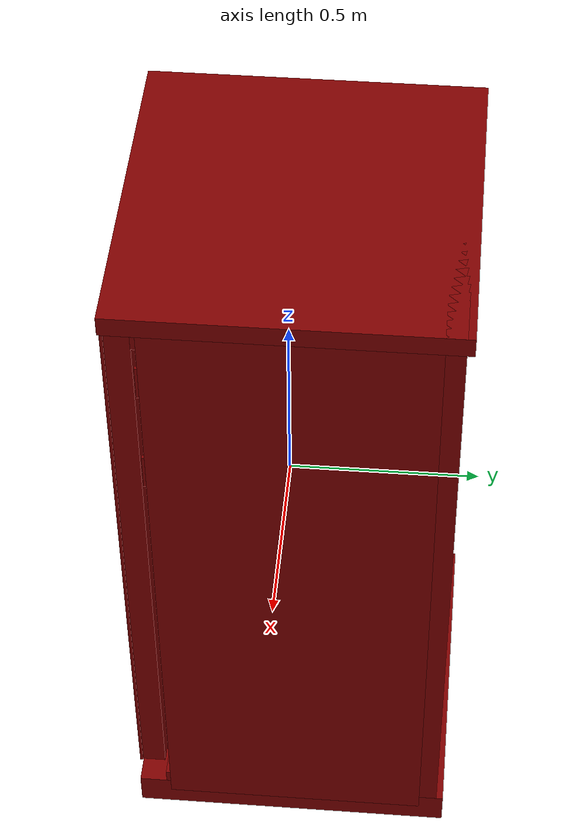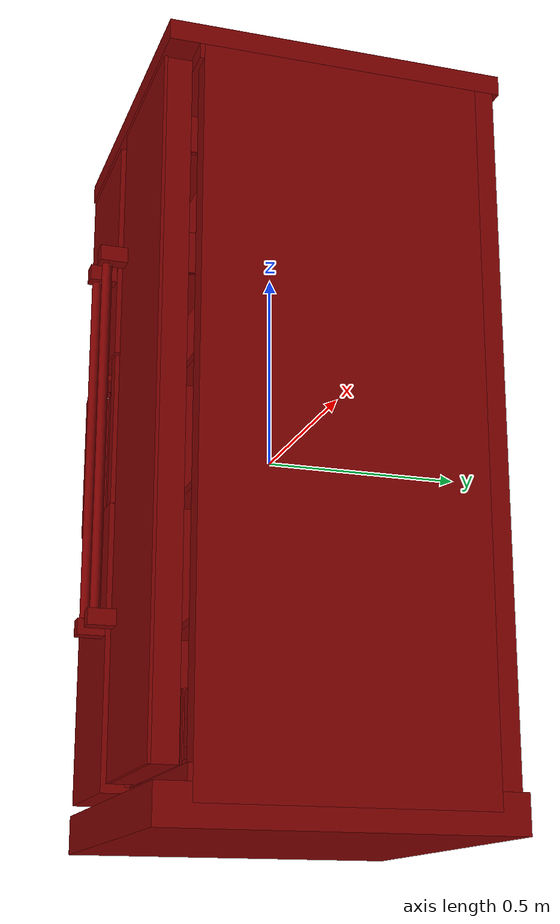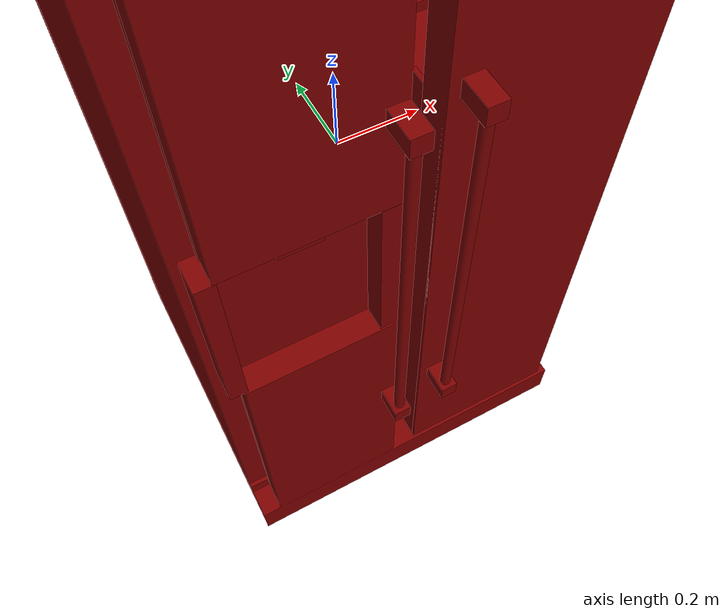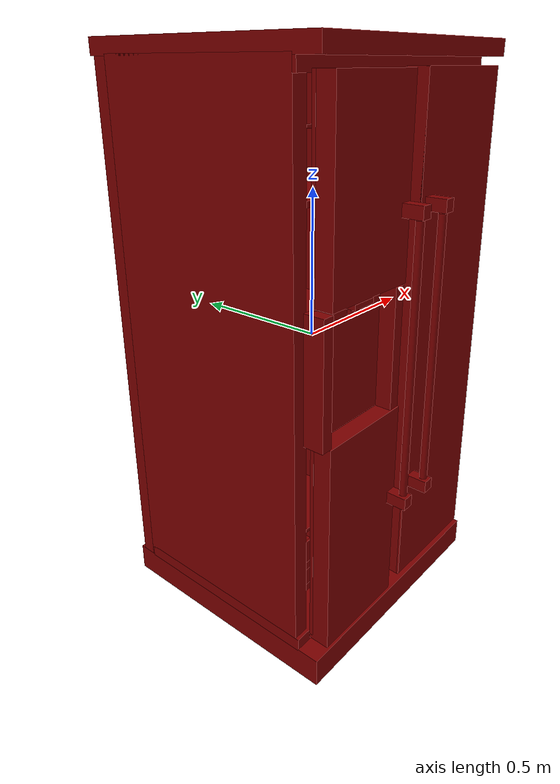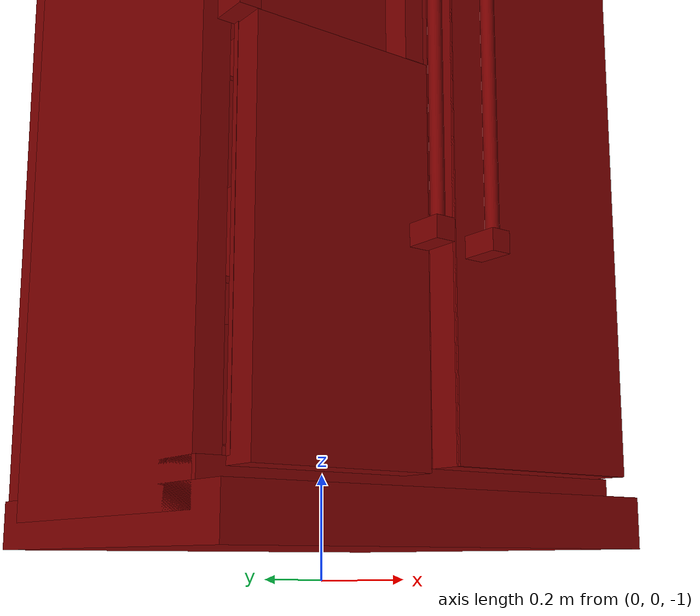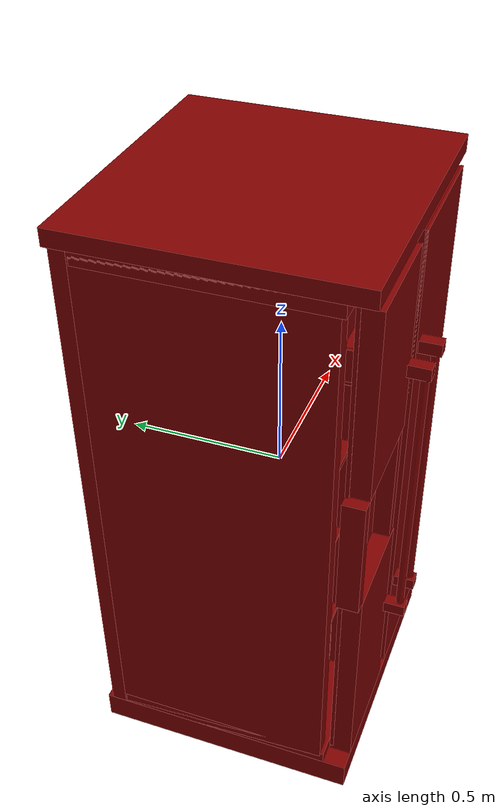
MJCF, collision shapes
<?xml version='1.0' encoding='UTF-8'?>
<mujoco model="model">
  <option timestep="0.005" gravity="0.0 0.0 -9.81"/>
  <compiler angle="radian"/>
  <asset>
    <mesh file="visuals/freezer_door.obj" name="freezer_door_vis"/>
    <mesh file="visuals/freezer_drawer0.obj" name="freezer_drawer0_vis"/>
    <mesh file="visuals/fridge_door.obj" name="fridge_door_vis"/>
    <mesh file="visuals/fridge_door_Clear.obj" name="fridge_door_Clear_vis"/>
    <mesh file="visuals/fridge_drawer0.obj" name="fridge_drawer0_vis"/>
    <mesh file="visuals/fridge_drawer0_Clear.obj" name="fridge_drawer0_Clear_vis"/>
    <mesh file="visuals/Body001.obj" name="Body001_vis"/>
    <mesh file="visuals/Body001_Clear.obj" name="Body001_Clear_vis"/>
    <texture file="visuals/T_BC001.png" name="Body001_material" type="2d"/>
    <material name="Body001_material" rgba="1 1 1 1.0" texture="Body001_material" shininess="0.5" specular="0.3103448502657381"/>
    <texture file="visuals/T_BC001.png" name="freezer_door_material" type="2d"/>
    <material name="freezer_door_material" rgba="1 1 1 1.0" texture="freezer_door_material" shininess="0.5" specular="0.3103448502657381"/>
    <texture file="visuals/T_BC001.png" name="freezer_drawer0_material" type="2d"/>
    <material name="freezer_drawer0_material" rgba="1 1 1 1.0" texture="freezer_drawer0_material" shininess="0.5" specular="0.3103448502657381"/>
    <texture file="visuals/T_BC001.png" name="fridge_door_material" type="2d"/>
    <material name="fridge_door_material" rgba="1 1 1 1.0" texture="fridge_door_material" shininess="0.5" specular="0.3103448502657381"/>
    <material name="fridge_door_Clear_material" rgba="0.7717612981796265 0.7717612981796265 0.7717612981796265 0.25" shininess="0.5" specular="0.3103448502657381"/>
    <texture file="visuals/T_BC001.png" name="fridge_drawer0_material" type="2d"/>
    <material name="fridge_drawer0_material" rgba="1 1 1 1.0" texture="fridge_drawer0_material" shininess="0.5" specular="0.3103448502657381"/>
    <material name="fridge_drawer0_Clear_material" rgba="0.7717612981796265 0.7717612981796265 0.7717612981796265 0.25" shininess="0.5" specular="0.3103448502657381"/>
    <material name="Body001_Clear_material" rgba="0.7717612981796265 0.7717612981796265 0.7717612981796265 0.25" shininess="0.5" specular="0.3103448502657381"/>
  </asset>
  <default>
    <default class="visual">
      <geom conaffinity="0" contype="0" group="1" type="mesh"/>
    </default>
    <default class="collision">
      <geom group="0" rgba="0.5 0 0 0.5"/>
    </default>
    <default class="spawn">
      <geom group="0" rgba="1 1 1 0.5" contype="0" conaffinity="0"/>
      <site group="0" rgba="1 1 1 0.5"/>
    </default>
    <default class="region">
      <geom group="1" conaffinity="0" contype="0" rgba="0 1 0 0"/>
    </default>
  </default>
  <worldbody>
    <body>
      <body name="object">
        <geom mesh="Body001_vis" type="mesh" solimp="0.998 0.998 0.001" solref="0.001 1" friction="0.95 0.3 0.1" class="visual" material="Body001_material"/>
        <geom class="collision" type="box" pos="-3.574727088562213e-05 0.4180082678794861 -0.0028153115417808294" size="0.45173972845077515 0.024893438443541527 0.938129723072052" quat="1.0 0.0 0.0 0.0"/>
        <geom class="collision" type="box" pos="-4.284229362383485e-06 0.03570566326379776 0.9094570875167847" size="0.45180371403694153 0.42542266845703125 0.025857482105493546" quat="1.0 0.0 0.0 0.0"/>
        <geom class="collision" type="box" pos="-3.574727088562213e-05 0.03566867113113403 -0.8937699794769287" size="0.45177221298217773 0.4254537522792816 0.047671034932136536" quat="1.0 0.0 0.0 0.0"/>
        <geom class="collision" type="box" pos="-0.42626821994781494 0.045118656009435654 0.0" size="0.025539742782711983 0.34963005781173706 0.8898904919624329" quat="1.0 0.0 0.0 0.0"/>
        <geom class="collision" type="box" pos="-0.04468351602554321 0.045118656009435654 0.0" size="0.026747845113277435 0.34963005781173706 0.8898904919624329" quat="1.0 0.0 0.0 0.0"/>
        <geom class="collision" type="box" pos="0.4241794943809509 0.045118656009435654 0.0" size="0.027567248791456223 0.34963005781173706 0.8898904919624329" quat="1.0 0.0 0.0 0.0"/>
        <geom class="collision" type="box" pos="-3.574727088562213e-05 0.03696683421730995 -0.8292543888092041" size="0.45177221298217773 0.35299330949783325 0.021167835220694542" quat="1.0 0.0 0.0 0.0"/>
        <geom class="collision" type="box" pos="-3.574727088562213e-05 0.03696683421730995 0.8663995265960693" size="0.45177221298217773 0.35299330949783325 0.021167870610952377" quat="1.0 0.0 0.0 0.0"/>
        <geom class="collision" type="box" pos="-0.2327532321214676 0.07044325768947601 0.5239828824996948" size="0.15743544697761536 0.31523481011390686 0.00892995297908783" quat="1.0 0.0 0.0 0.0"/>
        <geom class="collision" type="box" pos="-0.2371075600385666 0.06846123188734055 0.18351960182189941" size="0.16178977489471436 0.3172158896923065 0.007833733223378658" quat="1.0 0.0 0.0 0.0"/>
        <geom class="collision" type="box" pos="-0.2327532321214676 0.07632682472467422 -0.16383428871631622" size="0.15743544697761536 0.30934932827949524 0.0036680845078080893" quat="1.0 0.0 0.0 0.0"/>
        <geom class="collision" type="box" pos="0.18661412596702576 0.07020843774080276 -0.12300799787044525" size="0.20260027050971985 0.3154667317867279 0.008525255136191845" quat="1.0 0.0 0.0 0.0"/>
        <geom class="collision" type="box" pos="0.1887836456298828 0.07026404142379761 0.5248534083366394" size="0.2004307508468628 0.31541016697883606 0.009232099168002605" quat="1.0 0.0 0.0 0.0"/>
        <geom class="collision" type="box" pos="0.18661412596702576 0.07020843774080276 0.20216870307922363" size="0.20260027050971985 0.31543806195259094 0.008524703793227673" quat="1.0 0.0 0.0 0.0"/>
        <geom class="collision" type="box" pos="-0.23879718780517578 0.07471239566802979 -0.5143452286720276" size="0.16347941756248474 0.3109334707260132 0.005887000821530819" quat="1.0 0.0 0.0 0.0"/>
        <geom class="collision" type="box" pos="0.18661412596702576 0.07020843774080276 -0.4525694251060486" size="0.20260027050971985 0.3154364228248596 0.008524672128260136" quat="1.0 0.0 0.0 0.0"/>
        <geom class="collision" type="box" pos="0.39106428623199463 0.07020843774080276 -0.6527823209762573" size="0.01731051877140999 0.31543561816215515 0.1667531430721283" quat="1.0 0.0 0.0 0.0"/>
        <geom class="collision" type="box" pos="-0.3914681077003479 0.07020843774080276 -0.6786187887191772" size="0.01610194705426693 0.3154347836971283 0.14091645181179047" quat="1.0 0.0 0.0 0.0"/>
        <body name="freezer_door">
          <joint axis="0.0 0.0 -1.0" pos="-0.4102840721607208 -0.35707998275756836 0.017313480377197266" limited="true" name="freezer_door_joint" range="0.0 1.5707963267948966" type="hinge" damping="1" frictionloss="1" armature=".01" stiffness="0.05"/>
          <geom mesh="freezer_door_vis" type="mesh" solimp="0.998 0.998 0.001" solref="0.001 1" friction="0.95 0.3 0.1" class="visual" material="freezer_door_material"/>
          <geom class="collision" type="box" pos="-0.23308248817920685 -0.35859963297843933 -0.4716695249080658" size="0.17166855931282043 0.03511670231819153 0.352693647146225" quat="1.0 0.0 0.0 0.0"/>
          <geom class="collision" type="box" pos="-0.23299886286258698 -0.3585893213748932 0.5669393539428711" size="0.17159730195999146 0.035106416791677475 0.28844690322875977" quat="1.0 0.0 0.0 0.0"/>
          <geom class="collision" type="box" pos="-0.41679680347442627 -0.35731759667396545 0.07822703570127487" size="0.019492769613862038 0.03383245691657066 0.1951131522655487" quat="1.0 0.0 0.0 0.0"/>
          <geom class="collision" type="box" pos="-0.08572738617658615 -0.35731759667396545 0.07822703570127487" size="0.019492793828248978 0.03383249789476395 0.1951133906841278" quat="1.0 0.0 0.0 0.0"/>
          <geom class="collision" type="box" pos="-0.25087979435920715 -0.3297492265701294 0.07822703570127487" size="0.15072783827781677 0.007263421546667814 0.19512563943862915" quat="1.0 0.0 0.0 0.0"/>
          <geom class="collision" type="box" pos="-0.24829870462417603 -0.2896501123905182 0.6265910863876343" size="0.14127379655838013 0.034701839089393616 0.0047733657993376255" quat="1.0 0.0 0.0 0.0"/>
          <geom class="collision" type="box" pos="-0.11297552287578583 -0.2896501123905182 0.6709846258163452" size="0.005090788006782532 0.03470392897725105 0.05093911662697792" quat="1.0 0.0 0.0 0.0"/>
          <geom class="collision" type="box" pos="-0.38325318694114685 -0.2896501123905182 0.67098468542099" size="0.004545565228909254 0.03470395877957344 0.05093913525342941" quat="1.0 0.0 0.0 0.0"/>
          <geom class="collision" type="box" pos="-0.08284567296504974 -0.41582635045051575 0.4938046634197235" size="0.01949291117489338 0.046118322759866714 0.020017951726913452" quat="1.0 0.0 0.0 0.0" name="freezer_door_handle_1"/>
          <geom class="collision" type="box" pos="-0.08284567296504974 -0.41582635045051575 -0.43190082907676697" size="0.01949293538928032 0.04611838236451149 0.020017951726913452" quat="1.0 0.0 0.0 0.0" name="freezer_door_handle_2"/>
          <geom class="collision" type="box" pos="-0.24867546558380127 -0.3481717109680176 0.26166754961013794" size="0.0428679883480072 0.03457985445857048 0.008216096088290215" quat="1.0 0.0 0.0 0.0"/>
          <geom class="collision" type="cylinder" pos="-0.0821428969502449 -0.44111940264701843 0.030123282223939896" size="0.012613501399755478 0.4395133852958679" quat="1.0 0.0 0.0 0.0" name="freezer_door_handle_main"/>
          <geom class="collision" type="cylinder" pos="-0.22978299856185913 -0.3494099974632263 0.24432069063186646" size="0.009704225696623325 0.012385389767587185" quat="1.0 0.0 0.0 0.0"/>
          <geom class="collision" type="cylinder" pos="-0.26655343174934387 -0.3494099974632263 0.24432069063186646" size="0.009704225696623325 0.012385389767587185" quat="1.0 0.0 0.0 0.0"/>
          <geom class="collision" type="box" pos="-0.24728763103485107 -0.256744921207428 0.6854457259178162" size="0.11403132230043411 0.003913906402885914 0.039933834224939346" quat="1.0 0.0 0.0 0.0"/>
          <geom class="collision" type="box" pos="-0.23337888717651367 -0.3295137286186218 0.022493427619338036" size="0.17197094857692719 0.006030810996890068 0.8323107957839966" quat="1.0 0.0 0.0 0.0" name="freezer_door_main"/>
        </body>
        <body name="freezer_drawer0">
          <geom class="region" name="reg_freezer_drawer0" type="box" pos="-0.21742775663733482 0.09240100532770157 -0.6708606779575348" size="0.11544682255387306 0.2665270919203758 0.0784696171283722"/>
          <joint axis="0.0 -1.0 0.0" pos="-0.2195877581834793 0.08571161329746246 -0.6834301948547363" limited="true" name="freezer_drawer0_joint" range="0.0 0.45" type="slide" damping="1" frictionloss="1" armature=".01" stiffness="0.05"/>
          <geom mesh="freezer_drawer0_vis" type="mesh" solimp="0.998 0.998 0.001" solref="0.001 1" friction="0.95 0.3 0.1" class="visual" material="freezer_drawer0_material"/>
          <geom class="collision" type="box" pos="-0.2180977314710617 0.07664361596107483 -0.7688060998916626" size="0.14340153336524963 0.2927916646003723 0.013361509889364243" quat="1.0 0.0 0.0 0.0"/>
          <geom class="collision" type="box" pos="-0.35043060779571533 0.07654658704996109 -0.6819152235984802" size="0.01021281722933054 0.29288870096206665 0.09808265417814255" quat="1.0 0.0 0.0 0.0"/>
          <geom class="collision" type="box" pos="-0.08482231944799423 0.07624107599258423 -0.6819152235984802" size="0.01021282933652401 0.2931942045688629 0.0980827733874321" quat="1.0 0.0 0.0 0.0"/>
          <geom class="collision" type="box" pos="-0.21932147443294525 -0.2118675857782364 -0.6257953643798828" size="0.12007889896631241 0.0032866031397134066 0.040951162576675415" quat="1.0 0.0 0.0 0.0"/>
          <geom class="collision" type="box" pos="-0.21932147443294525 0.3699532747268677 -0.6692607402801514" size="0.12007889896631241 0.0033624242059886456 0.08441653102636337" quat="1.0 0.0 0.0 0.0"/>
          <geom class="collision" type="box" pos="-0.21932147443294525 -0.19866451621055603 -0.7251388430595398" size="0.12007889896631241 0.016489455476403236 0.02957073599100113" quat="1.0 0.0 0.0 0.0"/>
          <geom class="collision" type="box" pos="-0.13600067794322968 -0.19866442680358887 -0.6813681721687317" size="0.04086754098534584 0.016489485278725624 0.015216811560094357" quat="1.0 0.0 0.0 0.0"/>
          <geom class="collision" type="box" pos="-0.30223241448402405 -0.19866442680358887 -0.6813681721687317" size="0.03903937712311745 0.016489511355757713 0.015216811560094357" quat="1.0 0.0 0.0 0.0"/>
        </body>
        <body name="fridge_door">
          <joint axis="0.0 0.0 1.0" pos="0.41606083512306213 -0.3575720489025116 0.0173148512840271" limited="true" name="fridge_door_joint" range="0.0 1.5707963267948966" type="hinge" damping="1" frictionloss="1" armature=".01" stiffness="0.05"/>
          <geom mesh="fridge_door_vis" type="mesh" solimp="0.998 0.998 0.001" solref="0.001 1" friction="0.95 0.3 0.1" class="visual" material="fridge_door_material"/>
          <geom class="collision" type="box" pos="0.20484568178653717 -0.358371764421463 0.02460833638906479" size="0.20361001789569855 0.03488553315401077 0.8341906666755676" quat="1.0 0.0 0.0 0.0"/>
          <geom class="collision" type="cylinder" pos="0.041350577026605606 -0.44111940264701843 0.030123282223939896" size="0.012613501399755478 0.4395133852958679" quat="1.0 0.0 0.0 0.0" name="fridge_door_handle_main"/>
          <geom class="collision" type="box" pos="0.04180731624364853 -0.41582635045051575 -0.43190082907676697" size="0.01949300803244114 0.04611855372786522 0.020017951726913452" quat="1.0 0.0 0.0 0.0" name="fridge_door_handle_2"/>
          <geom class="collision" type="box" pos="0.04180731624364853 -0.41582635045051575 0.4938046634197235" size="0.01949303224682808 0.046118613332509995 0.020017951726913452" quat="1.0 0.0 0.0 0.0" name="fridge_door_handle_1"/>
          <geom class="collision" type="box" pos="0.2036997675895691 -0.2896501123905182 0.31993919610977173" size="0.18109509348869324 0.034702230244874954 0.004773653578013182" quat="1.0 0.0 0.0 0.0"/>
          <geom class="collision" type="box" pos="0.025358308106660843 -0.2896501123905182 0.3672685921192169" size="0.004545565228909254 0.03470395877957344 0.05049070343375206" quat="1.0 0.0 0.0 0.0"/>
          <geom class="collision" type="box" pos="0.38523954153060913 -0.2896501123905182 0.36726853251457214" size="0.005090788006782532 0.03470392897725105 0.05049068480730057" quat="1.0 0.0 0.0 0.0"/>
          <geom class="collision" type="box" pos="0.2036997675895691 -0.2896501123905182 0.6278215646743774" size="0.18109509348869324 0.0347023606300354 0.004773653578013182" quat="1.0 0.0 0.0 0.0"/>
          <geom class="collision" type="box" pos="0.025358308106660843 -0.2896501123905182 0.6742992997169495" size="0.004545565228909254 0.03470395505428314 0.04705320671200752" quat="1.0 0.0 0.0 0.0"/>
          <geom class="collision" type="box" pos="0.38523954153060913 -0.2896501421928406 0.6742992401123047" size="0.005091222934424877 0.03470689430832863 0.04705721139907837" quat="1.0 0.0 0.0 0.0"/>
          <geom class="collision" type="box" pos="0.2040991485118866 -0.25648218393325806 0.686622679233551" size="0.15500517189502716 0.0036017941311001778 0.03938532620668411" quat="1.0 0.0 0.0 0.0"/>
          <geom class="collision" type="box" pos="0.2040991485118866 -0.25648218393325806 0.38032856583595276" size="0.15500536561012268 0.0036017941311001778 0.03938537836074829" quat="1.0 0.0 0.0 0.0"/>
          <geom class="collision" type="box" pos="0.20709335803985596 -0.3892327547073364 0.02460833638906479" size="0.20585769414901733 0.004026219714432955 0.8342103362083435" quat="1.0 0.0 0.0 0.0" name="fridge_door_main"/>
          <body name="fridge_door_Clear">
            <geom mesh="fridge_door_Clear_vis" type="mesh" solimp="0.998 0.998 0.001" solref="0.001 1" friction="0.95 0.3 0.1" class="visual" material="fridge_door_Clear_material"/>
            <geom class="collision" type="box" pos="0.2040991485118866 -0.25648218393325806 0.686622679233551" size="0.15500517189502716 0.0036017941311001778 0.03938532620668411" quat="1.0 0.0 0.0 0.0"/>
            <geom class="collision" type="box" pos="0.2040991485118866 -0.25648218393325806 0.38032856583595276" size="0.15500536561012268 0.0036017941311001778 0.03938537836074829" quat="1.0 0.0 0.0 0.0"/>
          </body>
        </body>
        <body name="fridge_drawer0">
          <geom class="region" name="reg_fridge_drawer0" type="box" pos="0.17539689224213362 0.09208659082651138 -0.6685689687728882" size="0.1564819019511342 0.26594403928518295 0.07569844818115234"/>
          <joint axis="0.0 -1.0 0.0" pos="0.1754477322101593 0.08571018278598785 -0.6834186911582947" limited="true" name="fridge_drawer0_joint" range="0.0 0.45" type="slide" damping="1" frictionloss="1" armature=".01" stiffness="0.05"/>
          <geom mesh="fridge_drawer0_vis" type="mesh" solimp="0.998 0.998 0.001" solref="0.001 1" friction="0.95 0.3 0.1" class="visual" material="fridge_drawer0_material"/>
          <geom class="collision" type="box" pos="0.35627177357673645 0.0771859735250473 -0.678084135055542" size="0.010212794877588749 0.29224932193756104 0.09808243811130524" quat="1.0 0.0 0.0 0.0"/>
          <geom class="collision" type="box" pos="0.002265164628624916 0.07628963887691498 -0.678084135055542" size="0.010212807916104794 0.29314565658569336 0.09808256477117538" quat="1.0 0.0 0.0 0.0"/>
          <geom class="collision" type="box" pos="0.18242888152599335 0.07628963887691498 -0.7649750113487244" size="0.18522994220256805 0.2931334972381592 0.013362164609134197" quat="1.0 0.0 0.0 0.0"/>
          <geom class="collision" type="box" pos="0.17849116027355194 -0.2097601592540741 -0.625745952129364" size="0.1696891188621521 0.0033516890835016966 0.0394631028175354" quat="1.0 0.0 0.0 0.0"/>
          <geom class="collision" type="box" pos="0.15871365368366241 0.3699532151222229 -0.6684530973434448" size="0.1621493101119995 0.003362426068633795 0.0821695402264595" quat="1.0 0.0 0.0 0.0"/>
          <geom class="collision" type="box" pos="0.17849116027355194 -0.20140260457992554 -0.7291679978370667" size="0.16969282925128937 0.011709202080965042 0.03308255970478058" quat="1.0 0.0 0.0 0.0"/>
          <geom class="collision" type="box" pos="0.2886153757572174 -0.20140260457992554 -0.6881449818611145" size="0.059570569545030594 0.011709215119481087 0.03308259695768356" quat="1.0 0.0 0.0 0.0"/>
          <geom class="collision" type="box" pos="0.06517648696899414 -0.20140260457992554 -0.6881449818611145" size="0.05957064405083656 0.011709227226674557 0.033082637935876846" quat="1.0 0.0 0.0 0.0"/>
          <body name="fridge_drawer0_Clear">
            <geom mesh="fridge_drawer0_Clear_vis" type="mesh" solimp="0.998 0.998 0.001" solref="0.001 1" friction="0.95 0.3 0.1" class="visual" material="fridge_drawer0_Clear_material"/>
            <geom class="collision" type="box" pos="0.17849116027355194 -0.2097601592540741 -0.625745952129364" size="0.1696891188621521 0.0033516890835016966 0.0394631028175354" quat="1.0 0.0 0.0 0.0"/>
            <geom class="collision" type="box" pos="0.15871365368366241 0.3699532151222229 -0.6684530973434448" size="0.1621493101119995 0.003362426068633795 0.0821695402264595" quat="1.0 0.0 0.0 0.0"/>
            <geom class="collision" type="box" pos="0.17849116027355194 -0.20140260457992554 -0.7291679978370667" size="0.16969282925128937 0.011709202080965042 0.03308255970478058" quat="1.0 0.0 0.0 0.0"/>
            <geom class="collision" type="box" pos="0.2886153757572174 -0.20140260457992554 -0.6881449818611145" size="0.059570569545030594 0.011709215119481087 0.03308259695768356" quat="1.0 0.0 0.0 0.0"/>
            <geom class="collision" type="box" pos="0.06517648696899414 -0.20140260457992554 -0.6881449818611145" size="0.05957064405083656 0.011709227226674557 0.033082637935876846" quat="1.0 0.0 0.0 0.0"/>
          </body>
        </body>
        <body name="Body001_Clear">
          <geom mesh="Body001_Clear_vis" type="mesh" solimp="0.998 0.998 0.001" solref="0.001 1" friction="0.95 0.3 0.1" class="visual" material="Body001_Clear_material"/>
          <geom class="collision" type="box" pos="0.18661412596702576 0.07020843774080276 -0.12300799787044525" size="0.20260027050971985 0.3154667317867279 0.008525255136191845" quat="1.0 0.0 0.0 0.0"/>
          <geom class="collision" type="box" pos="0.1887836456298828 0.07026404142379761 0.5248534083366394" size="0.2004307508468628 0.31541016697883606 0.009232099168002605" quat="1.0 0.0 0.0 0.0"/>
          <geom class="collision" type="box" pos="0.18661412596702576 0.07020843774080276 0.20216870307922363" size="0.20260027050971985 0.31543806195259094 0.008524703793227673" quat="1.0 0.0 0.0 0.0"/>
        </body>
        <geom class="region" name="reg_freezer_shelf3" type="box" pos="-0.2324979528784752 0.07216125726699829 0.6865849196910858" size="0.15489344841241837 0.3108192811012268 0.14675520157814026"/>
        <geom class="region" name="reg_freezer_shelf2" type="box" pos="-0.23333770036697388 0.07167620211839676 0.3531992882490158" size="0.15538610315322876 0.3087182397246361 0.15605750477313995"/>
        <geom class="region" name="reg_freezer_shelf1" type="box" pos="-0.23500047624111176 0.07221735268831253 0.006542392075061798" size="0.15502163565158844 0.30723798817396164 0.1602712327837944"/>
        <geom class="region" name="reg_freezer_shelf0" type="box" pos="-0.23454882949590683 0.06945423781871796 -0.3425944522023201" size="0.15648742562532425 0.2998444119691849 0.158168410718441"/>
        <geom class="region" name="reg_fridge_shelf3" type="box" pos="0.19161811866797507 0.07112450897693634 0.6856733560562134" size="0.19389660057984293 0.30931854045391083 0.14570809698104858"/>
        <geom class="region" name="reg_fridge_shelf2" type="box" pos="0.19245707197114825 0.06962138414382935 0.3628503233194351" size="0.19315700821951032 0.30975566601753235 0.14469623363018036"/>
        <geom class="region" name="reg_fridge_shelf1" type="box" pos="0.19210258522070944 0.0664680153131485 0.03841426596045494" size="0.1945901006218046 0.3115565458536148 0.14362429252266884"/>
        <geom class="region" name="reg_fridge_shelf0" type="box" pos="0.18930003605782986 0.07200044393539429 -0.2902291417121887" size="0.19337651862204075 0.30944777822494507 0.1444662938117981"/>
        <geom class="region" name="reg_main" type="box" pos="-9.492039680480957e-06 0.032752200961112976 0.00012764334678649902" size="0.45281429386138916 0.4294836947917938 0.9425686130523682"/>
      </body>
    </body>
  </worldbody>
  <actuator>
    <motor name="freezer_door_joint_actuator" joint="freezer_door_joint" gear="50"/>
    <motor name="freezer_drawer0_joint_actuator" joint="freezer_drawer0_joint" gear="50"/>
    <motor name="fridge_door_joint_actuator" joint="fridge_door_joint" gear="50"/>
    <motor name="fridge_drawer0_joint_actuator" joint="fridge_drawer0_joint" gear="50"/>
  </actuator>
</mujoco>
